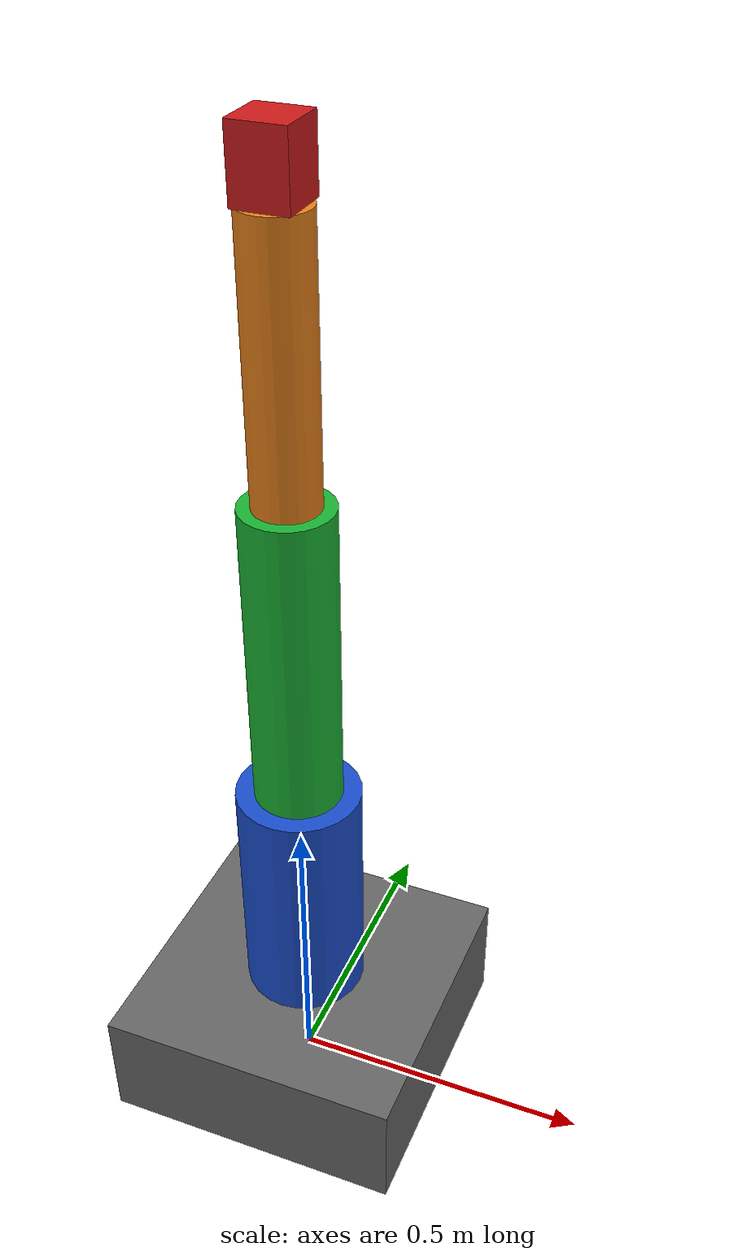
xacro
<?xml version="1.0" ?>
<robot name="four_dof_arm" xmlns:xacro="http://www.ros.org/wiki/xacro">

  <material name="grey">  <color rgba="0.4 0.4 0.4 1.0"/> </material>
  <material name="blue">  <color rgba="0.1 0.3 0.8 1.0"/> </material>
  <material name="green"> <color rgba="0.1 0.7 0.2 1.0"/> </material>
  <material name="orange"><color rgba="0.9 0.5 0.1 1.0"/> </material>
  <material name="red">   <color rgba="0.8 0.1 0.1 1.0"/> </material>

  <link name="base_link">
    <visual>
      <origin rpy="0 0 0" xyz="0 0 0.1"/>
      <geometry><box size="0.5 0.5 0.2"/></geometry>
      <material name="grey"/>
    </visual>
    <collision><origin rpy="0 0 0" xyz="0 0 0.1"/><geometry><box size="0.5 0.5 0.2"/></geometry></collision>
    <inertial><mass value="2.0"/><inertia ixx="0.02" ixy="0" ixz="0" iyy="0.02" iyz="0" izz="0.04"/></inertial>
  </link>

  <joint name="joint_1" type="revolute">
    <axis xyz="0 0 1"/>
    <limit effort="1000.0" lower="-3.14" upper="3.14" velocity="0.5"/>
    <origin rpy="0 0 0" xyz="0 0 0.2"/>
    <parent link="base_link"/><child link="link_01"/>
  </joint>

  <link name="link_01">
    <visual>
      <origin rpy="0 0 0" xyz="0 0 0.2"/>
      <geometry><cylinder radius="0.1" length="0.4"/></geometry>
      <material name="blue"/>
    </visual>
    <collision><origin rpy="0 0 0" xyz="0 0 0.2"/><geometry><cylinder radius="0.1" length="0.4"/></geometry></collision>
    <inertial><mass value="1.5"/><inertia ixx="0.01" ixy="0" ixz="0" iyy="0.01" iyz="0" izz="0.005"/></inertial>
  </link>

  <joint name="joint_2" type="revolute">
    <axis xyz="0 1 0"/>
    <limit effort="1000.0" lower="-1.57" upper="1.57" velocity="0.5"/>
    <origin rpy="0 0 0" xyz="0 0 0.4"/>
    <parent link="link_01"/><child link="link_02"/>
  </joint>

  <link name="link_02">
    <visual>
      <origin rpy="0 0 0" xyz="0 0 0.25"/>
      <geometry><cylinder radius="0.07" length="0.5"/></geometry>
      <material name="green"/>
    </visual>
    <collision><origin rpy="0 0 0" xyz="0 0 0.25"/><geometry><cylinder radius="0.07" length="0.5"/></geometry></collision>
    <inertial><mass value="1.0"/><inertia ixx="0.008" ixy="0" ixz="0" iyy="0.008" iyz="0" izz="0.003"/></inertial>
  </link>

  <joint name="joint_3" type="revolute">
    <axis xyz="0 1 0"/>
    <limit effort="1000.0" lower="-1.57" upper="1.57" velocity="0.5"/>
    <origin rpy="0 0 0" xyz="0 0 0.5"/>
    <parent link="link_02"/><child link="link_03"/>
  </joint>

  <link name="link_03">
    <visual>
      <origin rpy="0 0 0" xyz="0 0 0.2"/>
      <geometry><cylinder radius="0.05" length="0.4"/></geometry>
      <material name="orange"/>
    </visual>
    <collision><origin rpy="0 0 0" xyz="0 0 0.2"/><geometry><cylinder radius="0.05" length="0.4"/></geometry></collision>
    <inertial><mass value="0.7"/><inertia ixx="0.004" ixy="0" ixz="0" iyy="0.004" iyz="0" izz="0.001"/></inertial>
  </link>

  <joint name="joint_4" type="revolute">
    <axis xyz="0 1 0"/>
    <limit effort="1000.0" lower="-1.57" upper="1.57" velocity="0.5"/>
    <origin rpy="0 0 0" xyz="0 0 0.4"/>
    <parent link="link_03"/><child link="end_effector"/>
  </joint>

  <link name="end_effector">
    <visual>
      <origin rpy="0 0 0" xyz="0 0 0.05"/>
      <geometry><box size="0.08 0.08 0.1"/></geometry>
      <material name="red"/>
    </visual>
    <collision><origin rpy="0 0 0" xyz="0 0 0.05"/><geometry><box size="0.08 0.08 0.1"/></geometry></collision>
    <inertial><mass value="0.3"/><inertia ixx="0.001" ixy="0" ixz="0" iyy="0.001" iyz="0" izz="0.001"/></inertial>
  </link>

</robot>
